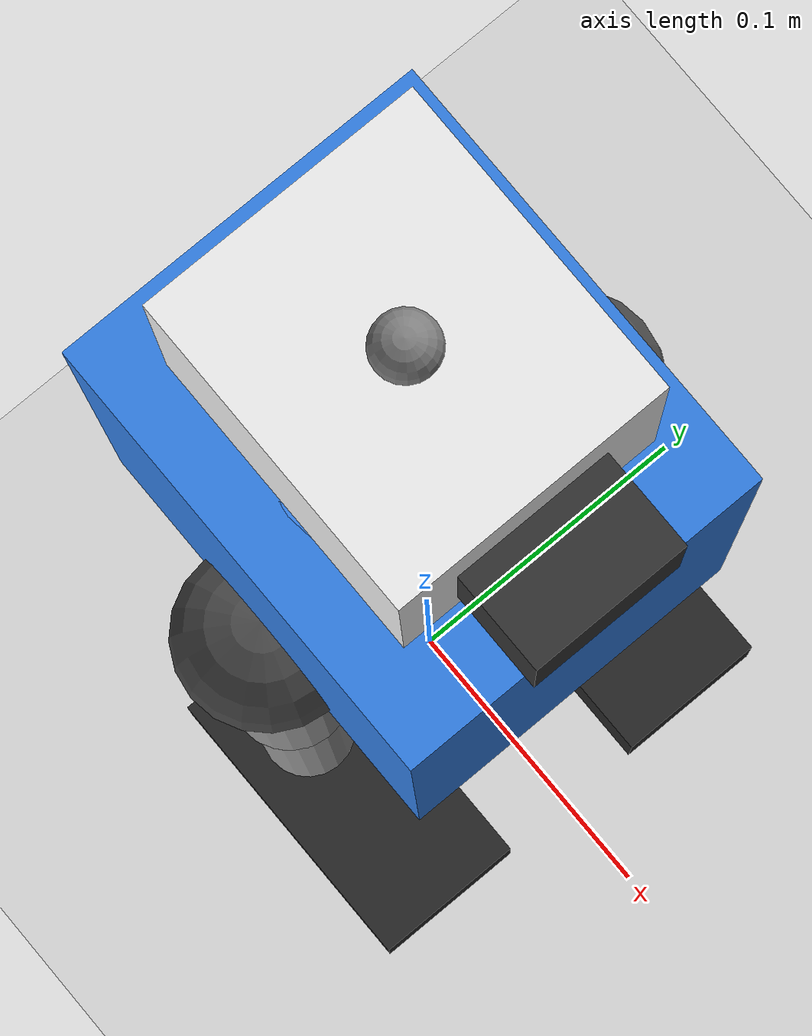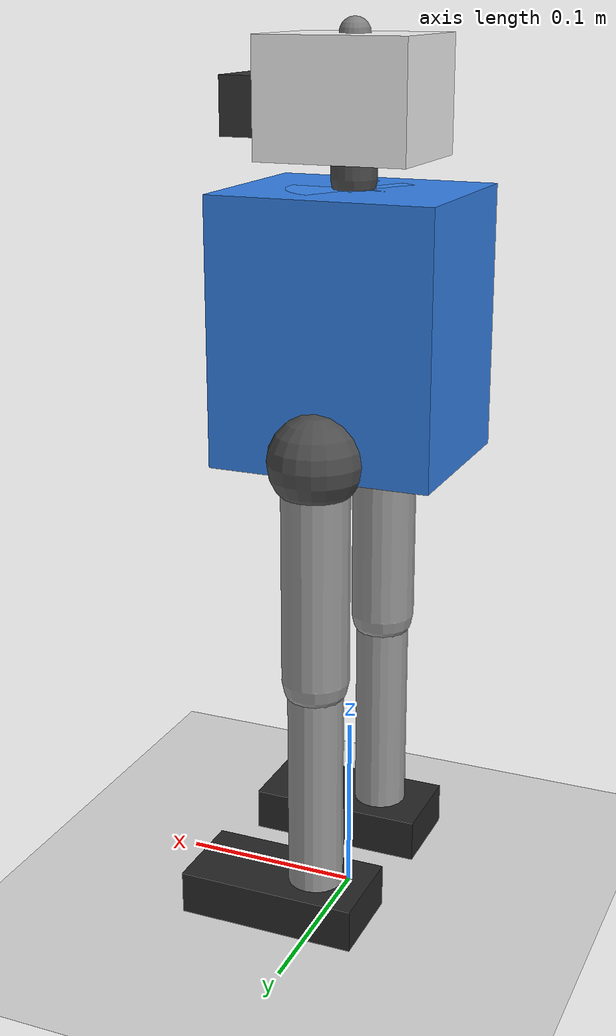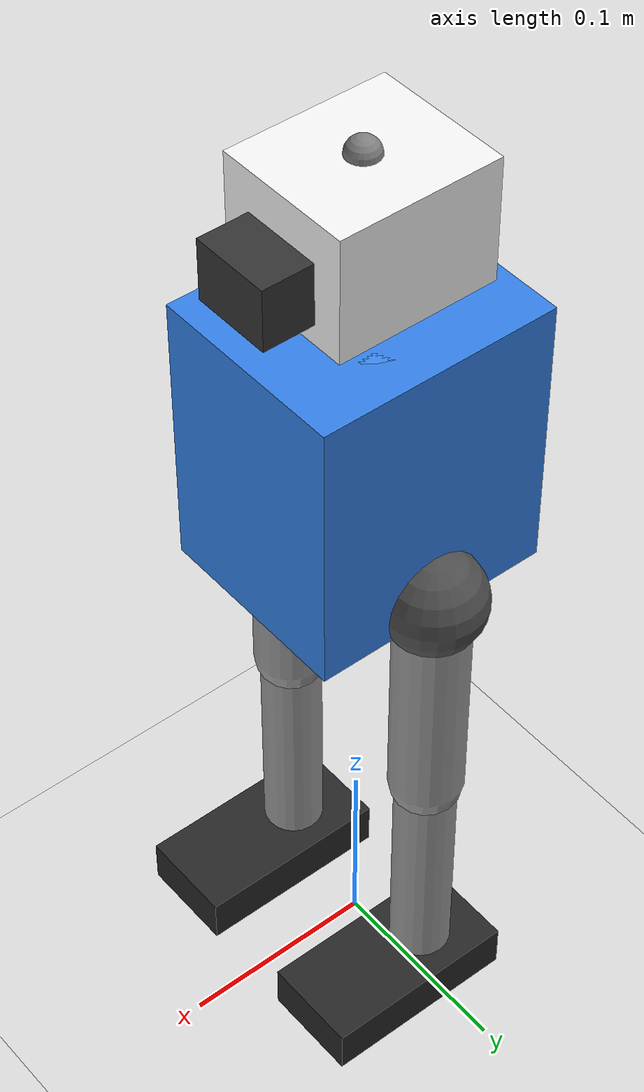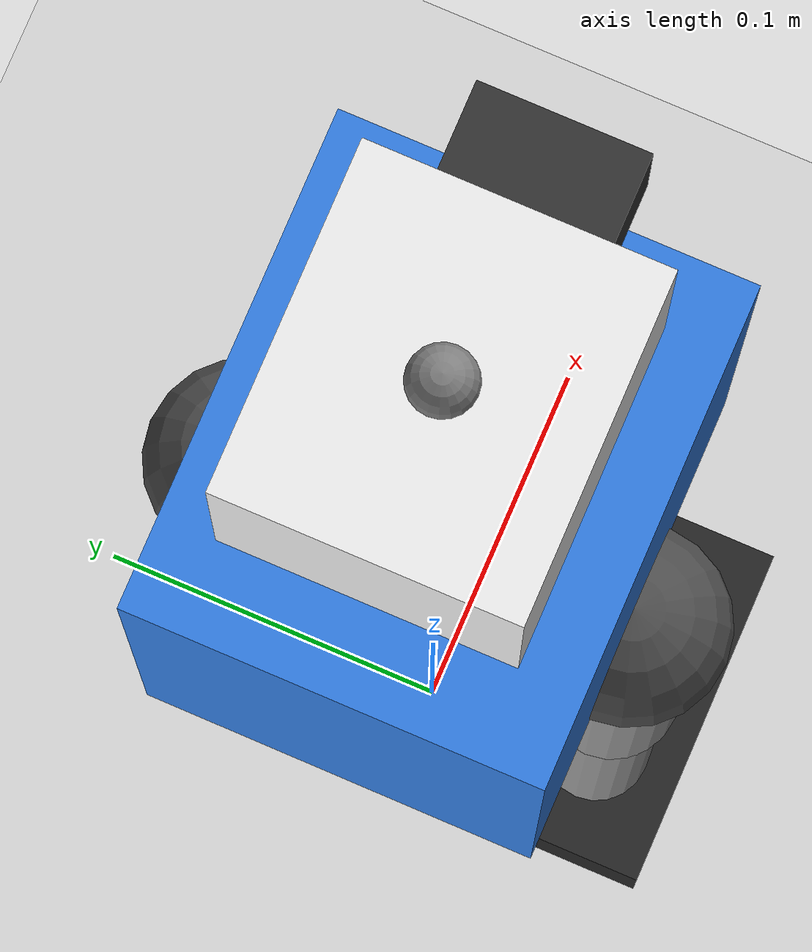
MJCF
<mujoco model="gardener_bdx">
  <compiler angle="radian" autolimits="true"/>
  <option timestep="0.002" gravity="0 0 -9.81" iterations="50" solver="Newton"/>

  <default>
    <joint damping="0.4" armature="0.01" frictionloss="0.05"/>
    <geom contype="1" conaffinity="1" condim="3" friction="1.0 0.05 0.01" density="700"/>
    <position kp="25" forcerange="-6 6"/>
    <default class="head">
      <position kp="8" forcerange="-2 2"/>
    </default>
  </default>

  <worldbody>
    <light name="top" pos="0 0 3" dir="0 0 -1" diffuse="0.8 0.8 0.8"/>
    <geom name="floor" type="plane" size="10 10 0.1" rgba="0.85 0.85 0.85 1" friction="1.0 0.05 0.01"/>

    <body name="torso" pos="0 0 0.33">
      <freejoint name="root"/>
      <inertial pos="0 0 0" mass="1.6" diaginertia="0.01 0.01 0.008"/>
      <geom name="torso" type="box" size="0.06 0.05 0.07" rgba="0.2 0.5 0.9 1"/>
      <!-- Carried water payload; mass shifts the CoM, exactly as on hardware. -->
      <geom name="water_tank" type="cylinder" pos="0 0 0.02" size="0.035 0.05" rgba="0.3 0.6 1 0.5" mass="1.0"/>
      <site name="imu" pos="0 0 0" size="0.01"/>

      <!-- Neck + head (camera/LiDAR mount) -->
      <body name="neck" pos="0 0 0.075">
        <joint name="neck_yaw" axis="0 0 1" range="-1.5 1.5"/>
        <geom name="neck" type="capsule" fromto="0 0 0 0 0 0.03" size="0.012" rgba="0.3 0.3 0.3 1"/>
        <body name="head" pos="0 0 0.04">
          <joint name="head_pitch" axis="0 1 0" range="-0.8 0.8"/>
          <geom name="head" type="box" size="0.04 0.035 0.03" rgba="0.95 0.95 0.95 1"/>
          <geom name="snout" type="box" pos="0.045 0 -0.005" size="0.02 0.02 0.015" rgba="0.2 0.2 0.2 1"/>
          <camera name="head_camera" pos="0.06 0 0.0" xyaxes="0 -1 0 0 0 1" fovy="70"/>
          <site name="lidar" pos="0.0 0 0.03" size="0.008"/>
        </body>
      </body>

      <!-- LEFT LEG (hip yaw+roll share one body; intermediate links need mass) -->
      <body name="left_hip" pos="0 0.05 -0.06">
        <joint name="left_hip_yaw" axis="0 0 1" range="-0.6 0.6"/>
        <joint name="left_hip_roll" axis="1 0 0" range="-0.4 0.4"/>
        <geom type="sphere" size="0.025" rgba="0.3 0.3 0.3 1"/>
        <body name="left_thigh" pos="0 0 0">
          <joint name="left_hip_pitch" axis="0 1 0" range="-1.6 0.8"/>
          <geom name="left_thigh" type="capsule" fromto="0 0 0 0 0 -0.12" size="0.018" rgba="0.6 0.6 0.6 1"/>
          <body name="left_shank" pos="0 0 -0.12">
            <joint name="left_knee" axis="0 1 0" range="0 1.8"/>
            <geom name="left_shank" type="capsule" fromto="0 0 0 0 0 -0.12" size="0.015" rgba="0.6 0.6 0.6 1"/>
            <body name="left_foot" pos="0 0 -0.12">
              <joint name="left_ankle_pitch" axis="0 1 0" range="-1.0 0.6"/>
              <geom name="left_foot" type="box" pos="0.02 0 -0.012" size="0.05 0.025 0.012" rgba="0.15 0.15 0.15 1"/>
              <site name="left_foot_site" pos="0.02 0 -0.024" size="0.01"/>
            </body>
          </body>
        </body>
      </body>

      <!-- RIGHT LEG -->
      <body name="right_hip" pos="0 -0.05 -0.06">
        <joint name="right_hip_yaw" axis="0 0 1" range="-0.6 0.6"/>
        <joint name="right_hip_roll" axis="1 0 0" range="-0.4 0.4"/>
        <geom type="sphere" size="0.025" rgba="0.3 0.3 0.3 1"/>
        <body name="right_thigh" pos="0 0 0">
          <joint name="right_hip_pitch" axis="0 1 0" range="-1.6 0.8"/>
          <geom name="right_thigh" type="capsule" fromto="0 0 0 0 0 -0.12" size="0.018" rgba="0.6 0.6 0.6 1"/>
          <body name="right_shank" pos="0 0 -0.12">
            <joint name="right_knee" axis="0 1 0" range="0 1.8"/>
            <geom name="right_shank" type="capsule" fromto="0 0 0 0 0 -0.12" size="0.015" rgba="0.6 0.6 0.6 1"/>
            <body name="right_foot" pos="0 0 -0.12">
              <joint name="right_ankle_pitch" axis="0 1 0" range="-1.0 0.6"/>
              <geom name="right_foot" type="box" pos="0.02 0 -0.012" size="0.05 0.025 0.012" rgba="0.15 0.15 0.15 1"/>
              <site name="right_foot_site" pos="0.02 0 -0.024" size="0.01"/>
            </body>
          </body>
        </body>
      </body>
    </body>
  </worldbody>

  <!-- Position actuators, one per joint, in canonical order. -->
  <actuator>
    <position name="left_hip_yaw"     joint="left_hip_yaw"     ctrlrange="-0.6 0.6"/>
    <position name="left_hip_roll"    joint="left_hip_roll"    ctrlrange="-0.4 0.4"/>
    <position name="left_hip_pitch"   joint="left_hip_pitch"   ctrlrange="-1.6 0.8"/>
    <position name="left_knee"        joint="left_knee"        ctrlrange="0 1.8"/>
    <position name="left_ankle_pitch" joint="left_ankle_pitch" ctrlrange="-1.0 0.6"/>
    <position name="right_hip_yaw"    joint="right_hip_yaw"    ctrlrange="-0.6 0.6"/>
    <position name="right_hip_roll"   joint="right_hip_roll"   ctrlrange="-0.4 0.4"/>
    <position name="right_hip_pitch"  joint="right_hip_pitch"  ctrlrange="-1.6 0.8"/>
    <position name="right_knee"       joint="right_knee"       ctrlrange="0 1.8"/>
    <position name="right_ankle_pitch" joint="right_ankle_pitch" ctrlrange="-1.0 0.6"/>
    <position name="neck_yaw"   class="head" joint="neck_yaw"   ctrlrange="-1.5 1.5"/>
    <position name="head_pitch" class="head" joint="head_pitch" ctrlrange="-0.8 0.8"/>
  </actuator>

  <sensor>
    <framequat   name="imu_quat" objtype="site" objname="imu"/>
    <gyro        name="imu_gyro" site="imu"/>
    <accelerometer name="imu_acc" site="imu"/>
    <touch name="left_foot_touch"  site="left_foot_site"/>
    <touch name="right_foot_touch" site="right_foot_site"/>
  </sensor>
</mujoco>
